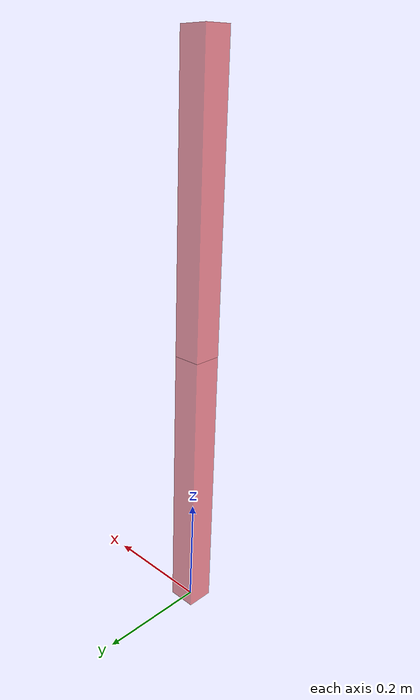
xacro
<?xml version="1.0"?>

<!-- UNIMATE Puma 560 Manipulator -->
<robot name="twolink" xmlns:xacro="http://www.ros.org/wiki/xacro">

  <!-- Some constants -->
  <xacro:property name="Pi" value="${3.1415926535897931}"/>
  <xacro:property name="width" value="0.05" />
  <xacro:property name="length" value="0.5" />
  <xacro:property name="mass" value="9.375" />

  <!-- Some esthetic color definitions -->
  <xacro:include filename="$(find twolink_description)/urdf/materials.xacro" />

  <!-- Some xacro macro definitions -->
  <xacro:include filename="$(find twolink_description)/urdf/definitions.xacro" />

  <!-- Import Gazebo components for now colors and control plugin -->
  <xacro:include filename="$(find twolink_description)/urdf/twolink.gazebo" />

  <!-- Link definitions -->
  <link name="world">
    <origin xyz="0 0 0" rpy="0 0 0" />
  </link>

  <link name="link_1">

    <visual>
      <origin xyz="0 0 ${- length/2}" rpy="0 0 0" />
      <geometry>
        <!-- Beam dimensions (width x width x length) -->
        <box size="${width} ${width} ${length}"/>
      </geometry>
      <material name="red_transparent"/>
    </visual>

    <inertial>
      <origin xyz="0 0 ${- length/2}" rpy="0 0 0"/>
      <mass value="${mass}"/>
      <inertia
        ixx="${(mass/12.0) * (width*width + length*length)}" ixy="0.0" ixz="0.0"
        iyy="${(mass/12.0) * (width*width + length*length)}" iyz="0.0"
        izz="${(mass/12.0) * (2 * width*width)}"/>
    </inertial>

  </link>

  <link name="link_2">

    <visual>
      <origin xyz="0 0 ${- length/2}" rpy="0 0 0" />
      <geometry>
        <!-- Beam dimensions (width x width x length) -->
        <box size="${width} ${width} ${length}"/>
      </geometry>
      <material name="red_transparent"/>
    </visual>

    <inertial>
      <origin xyz="0 0 ${- length/2}" rpy="0 0 0"/>
      <mass value="${mass}"/>
      <inertia
        ixx="${(mass/12.0) * (width*width + length*length)}" ixy="0.0" ixz="0.0"
        iyy="${(mass/12.0) * (width*width + length*length)}" iyz="0.0"
        izz="${(mass/12.0) * (2 * width*width)}"/>
    </inertial>

    </link>

    <!-- Joint definitions -->

    <joint name="joint_1" type="continuous">

      <parent link="world"/>
      <child link="link_1"/>
      <origin xyz="0 0 ${2 * length}" rpy="0 0 0" />
      <axis xyz="1 0 0" />
      <dynamics damping="50.0"/>
      <dynamics friction="0.0"/>
      <dynamics spring_reference="0.0"/>
      <dynamics spring_stiffness="10.0"/>
    </joint>

    <joint name="joint_2" type="continuous">

      <parent link="link_1"/>
      <child link="link_2"/>
      <origin xyz="0 0 ${- length}" rpy="0 0 0" />
      <axis xyz="1 0 0" />
      <dynamics damping="50.0" spring_stiffness="200.0" />

    </joint>

    <transmission name="joint_1_transmission">
      <type>transmission_interface/SimpleTransmission</type>
      <joint name="joint_1">
        <hardwareInterface>EffortJointInterface</hardwareInterface>
      </joint>
      <actuator name="joint_1_actuator">
        <hardwareInterface>EffortJointInterface</hardwareInterface>
        <mechanicalReduction>1</mechanicalReduction>
      </actuator>
    </transmission>

    <transmission name="joint_2_transmission">
      <type>transmission_interface/SimpleTransmission</type>
      <joint name="joint_2">
        <hardwareInterface>EffortJointInterface</hardwareInterface>
      </joint>
      <actuator name="joint_2_actuator">
        <hardwareInterface>EffortJointInterface</hardwareInterface>
        <mechanicalReduction>1</mechanicalReduction>
      </actuator>
    </transmission>

  </robot>

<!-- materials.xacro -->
<robot>

	<material name="black">
		<color rgba="0.0 0.0 0.0 1.0"/>
	</material>

	<material name="blue">
		<color rgba="0.0 0.0 0.8 1.0"/>
	</material>

	<material name="green">
		<color rgba="0.0 0.8 0.0 1.0"/>
	</material>

	<material name="grey">
		<color rgba="0.2 0.2 0.2 1.0"/>
	</material>

	<material name="red">
		<color rgba="0.8 0.0 0.0 1.0"/>
	</material>

	<material name="red_transparent">
		<color rgba="0.8 0.0 0.0 0.5"/>
	</material>

	<material name="white">
		<color rgba="1.0 1.0 1.0 1.0"/>
	</material>

	<material name="white_transparent">
		<color rgba="1.0 1.0 1.0 0.5"/>
	</material>

	<material name="orange">
		<color rgba="${255/255} ${108/255} ${10/255} 1.0"/>
	</material>

	<material name="brown">
		<color rgba="${222/255} ${207/255} ${195/255} 1.0"/>
	</material>

	<material name="Metal">
		<color rgba="${211/255} ${211/255} ${211/255} 1.0" />
	</material>

	<material name="wood">
		<color rgba="${205/255} ${133/255} ${63/255} 1.0" />
	</material>

</robot>
